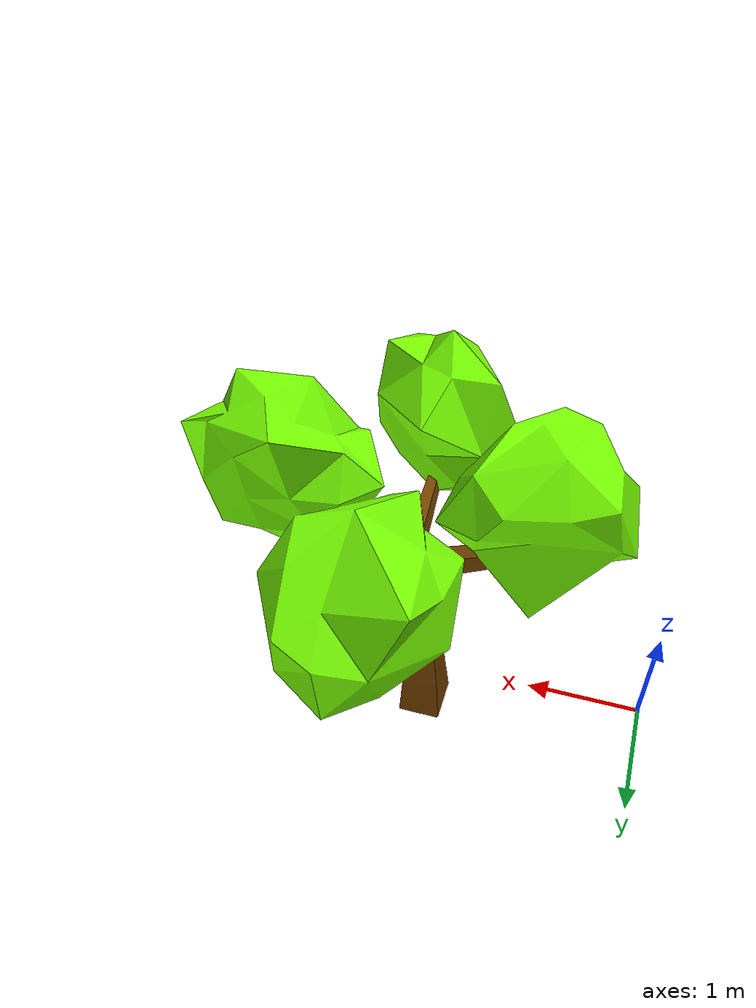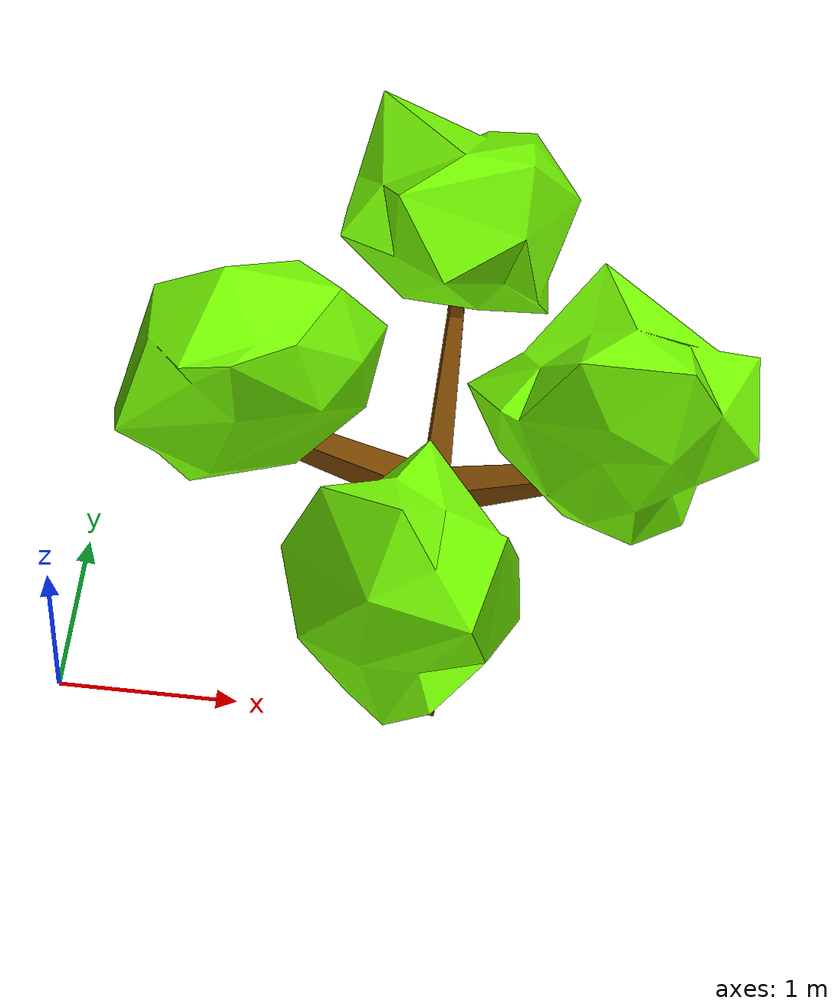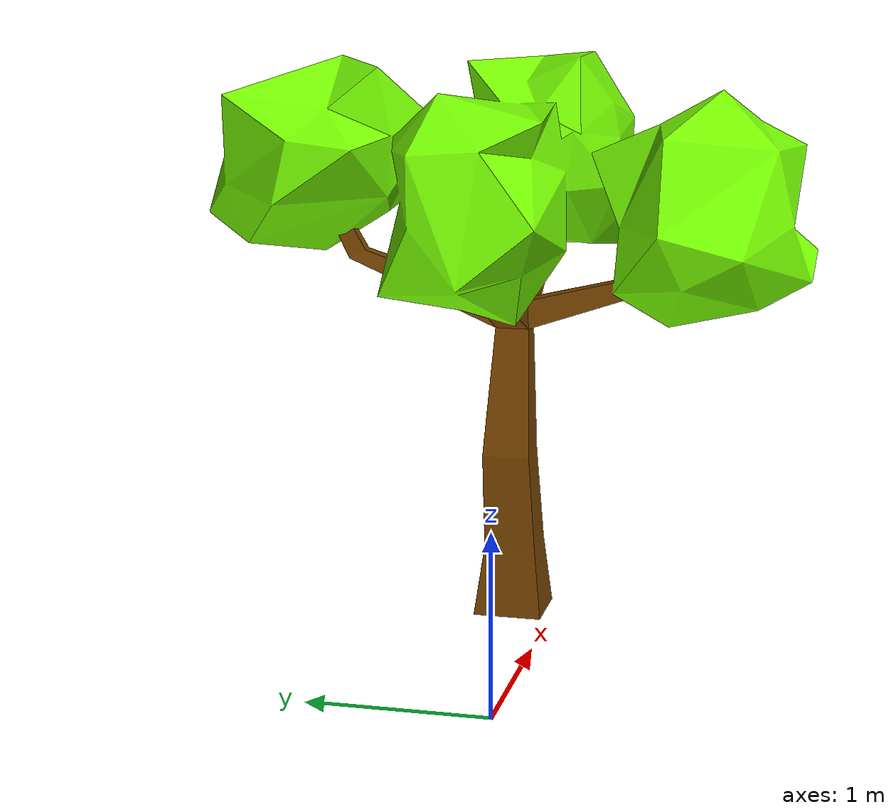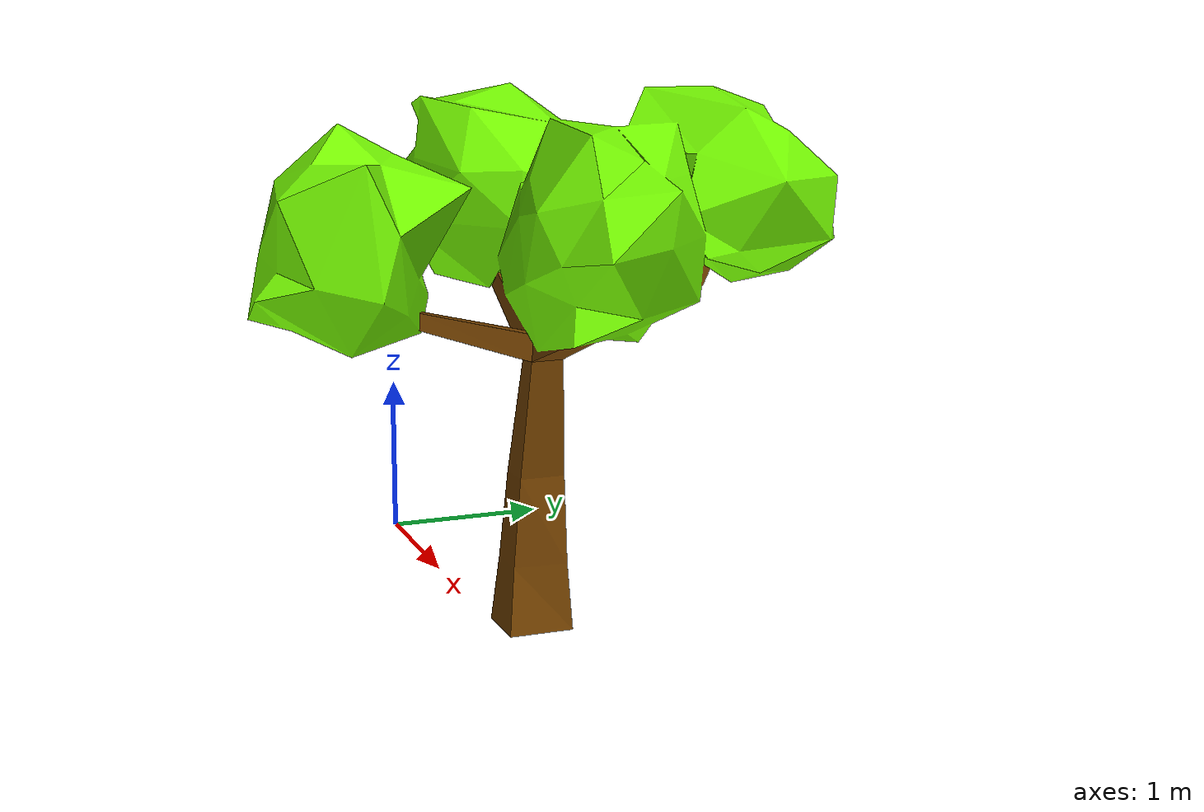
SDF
<?xml version="1.0" ?>
<sdf version="1.0">
  <model name="tree 2">
    <static>true</static>
    <link name="link">

      <collision name="collision">
        <geometry>
          <mesh>
            <uri>model://tree2/meshes/tree2.dae</uri>
            <scale>0.1 0.1 0.1</scale>
          </mesh>
        </geometry>
      </collision>

      <visual name="visual">
        <geometry>
          <mesh>
            <uri>model://tree2/meshes/tree2.dae</uri>
            <scale>0.1 0.1 0.1</scale>
          </mesh>
        </geometry>
      </visual>

    </link>
  </model>
</sdf>
